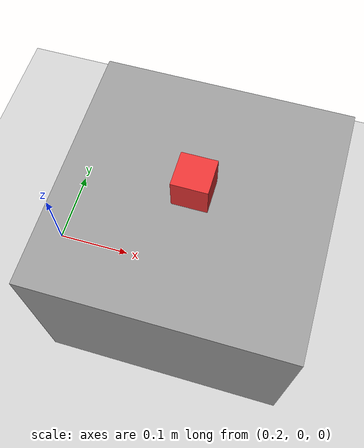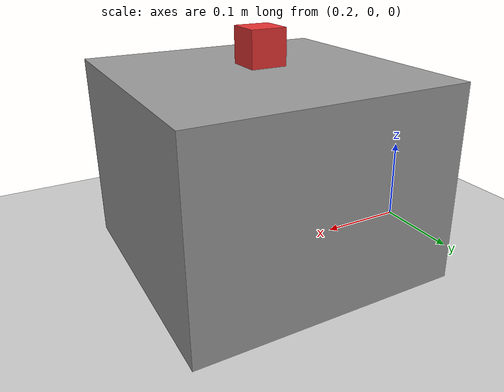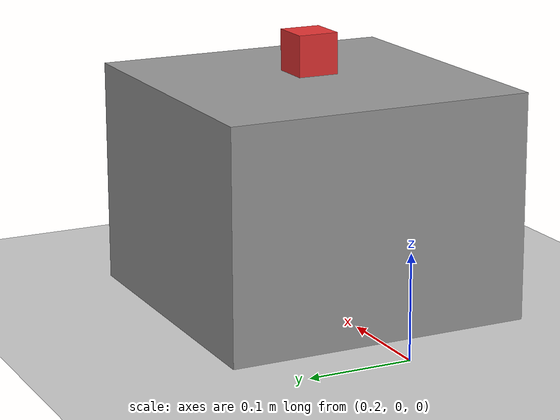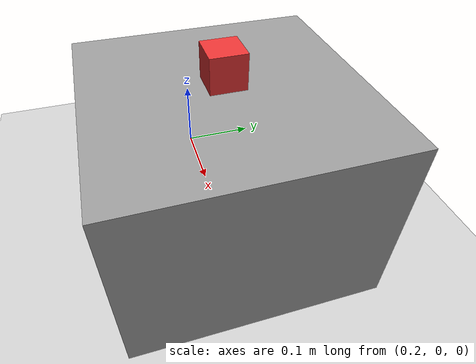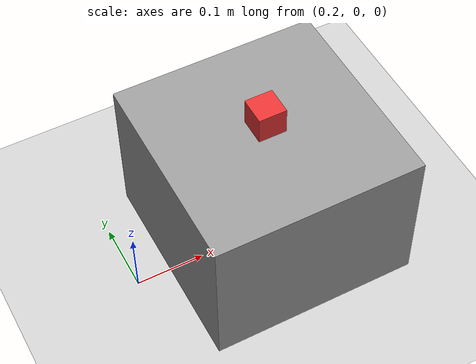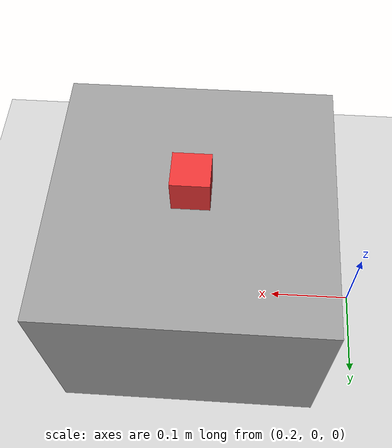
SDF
<?xml version="1.0"?>
<sdf version="1.6">
  <world name="default">
    <include>
      <uri>model://ground_plane</uri>
    </include>
    <include>
      <uri>model://sun</uri>
    </include>

    <model name="pickup_table">
      <static>true</static>
      <pose>0.40 0.00 0.11 0 0 0</pose>
      <link name="table_link">
        <collision name="table_collision">
          <geometry>
            <box>
              <size>0.30 0.30 0.22</size>
            </box>
          </geometry>
        </collision>
        <visual name="table_visual">
          <geometry>
            <box>
              <size>0.30 0.30 0.22</size>
            </box>
          </geometry>
          <material>
            <ambient>0.5 0.5 0.5 1</ambient>
            <diffuse>0.6 0.6 0.6 1</diffuse>
          </material>
        </visual>
      </link>
    </model>

    <model name="grasp_box">
      <static>false</static>
      <pose>0.40 0.00 0.245 0 0 0</pose>
      <link name="box_link">
        <inertial>
          <mass>0.08</mass>
          <inertia>
            <ixx>0.000012</ixx>
            <ixy>0</ixy>
            <ixz>0</ixz>
            <iyy>0.000012</iyy>
            <iyz>0</iyz>
            <izz>0.000012</izz>
          </inertia>
        </inertial>
        <collision name="box_collision">
          <geometry>
            <box>
              <size>0.04 0.04 0.04</size>
            </box>
          </geometry>
          <surface>
            <friction>
              <ode>
                <mu>2.0</mu>
                <mu2>2.0</mu2>
              </ode>
            </friction>
            <contact>
              <ode>
                <kp>1000000</kp>
                <kd>10</kd>
                <max_vel>0.2</max_vel>
                <min_depth>0.001</min_depth>
              </ode>
            </contact>
          </surface>
        </collision>
        <visual name="box_visual">
          <geometry>
            <box>
              <size>0.04 0.04 0.04</size>
            </box>
          </geometry>
          <material>
            <ambient>0.8 0.1 0.1 1</ambient>
            <diffuse>0.9 0.2 0.2 1</diffuse>
          </material>
        </visual>
      </link>
    </model>
  </world>
</sdf>
